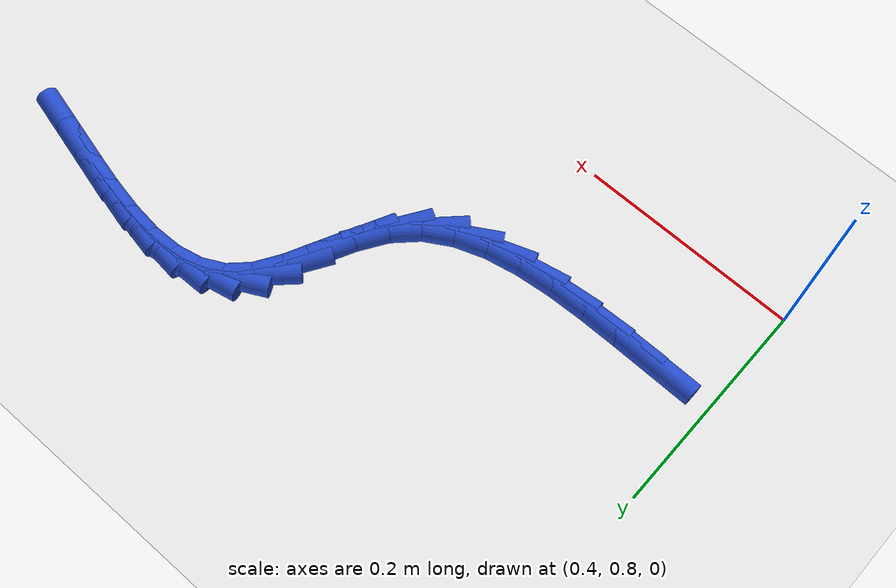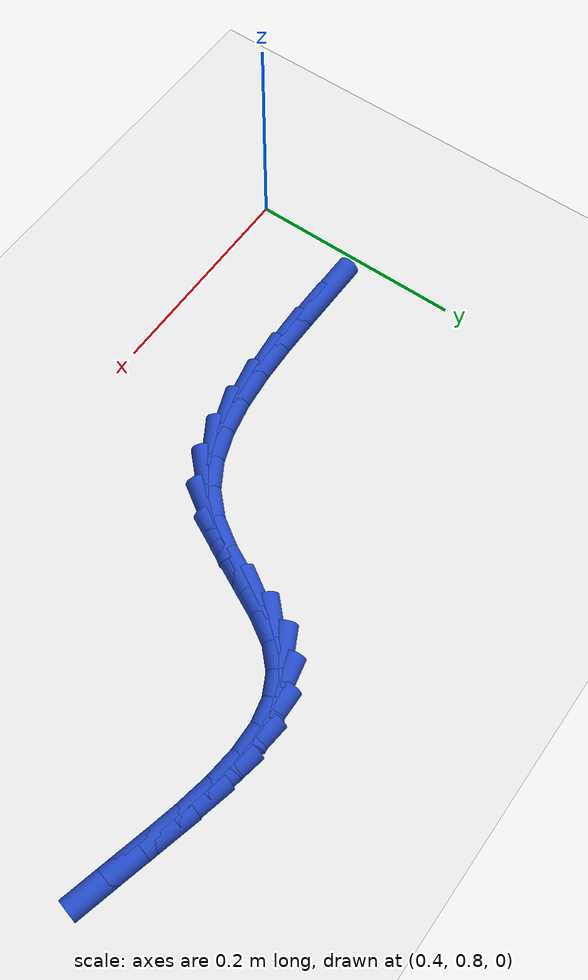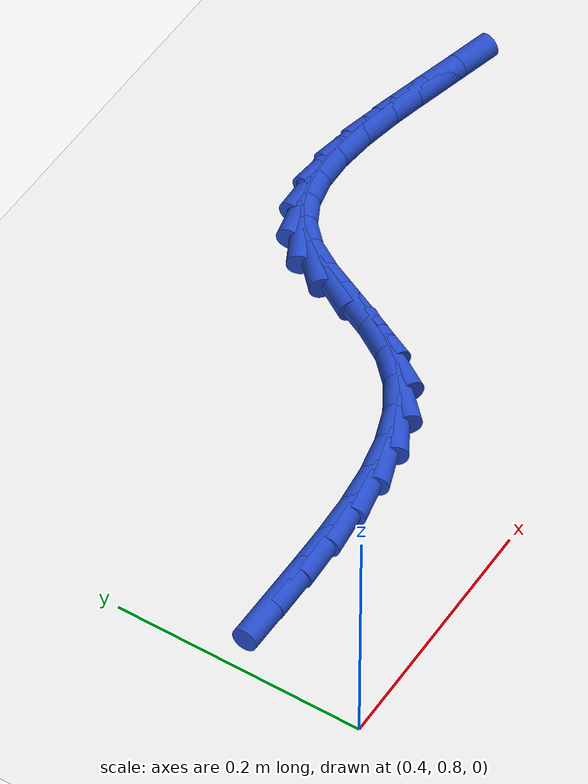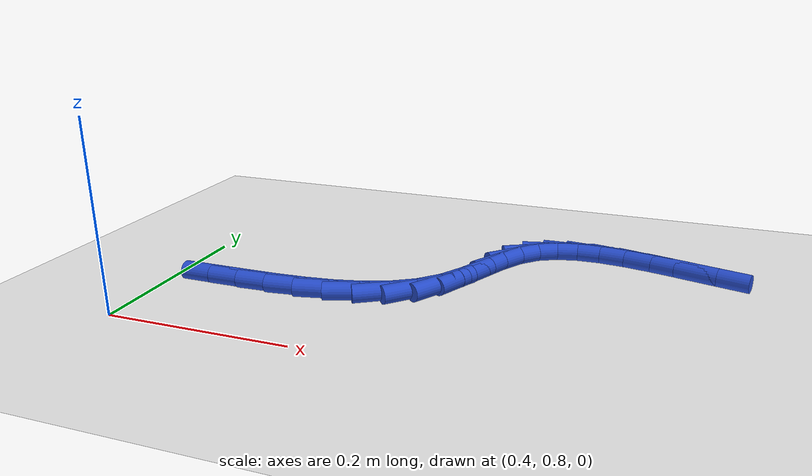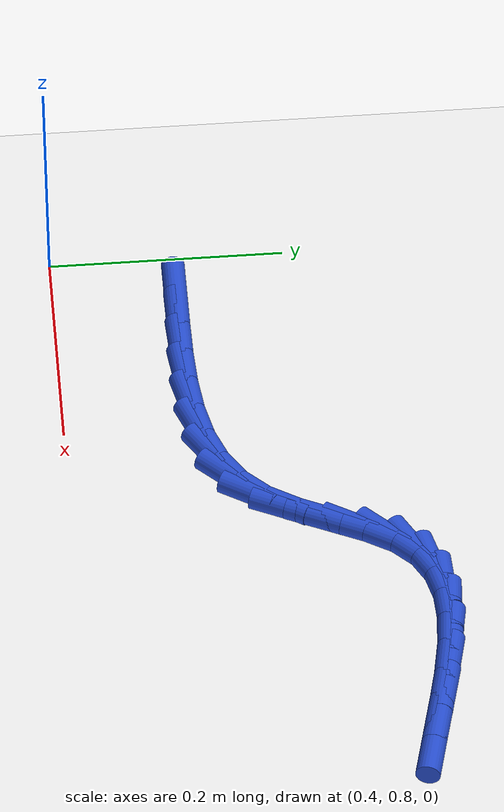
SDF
<sdf version="1.6">
 <world name="default">
  <model name="ground_plane">
   <static>1</static>
   <link name="link">
    <collision name="collision">
     <geometry><plane><normal>0 0 1</normal><size>100 100</size></plane></geometry>
     <surface><friction><ode><mu>100</mu><mu2>50</mu2></ode></friction></surface>
    </collision>
    <visual name="visual">
     <cast_shadows>0</cast_shadows>
     <geometry><plane><normal>0 0 1</normal><size>100 100</size></plane></geometry>
     <material>
      <script><uri>file://media/materials/scripts/gazebo.material</uri><name>Gazebo/WhiteGlow</name></script>
     </material>
    </visual>
   </link>
  </model>
  <model name="line">
   <link name="link_39">
    <pose>0.45605554837720175 0.9045013837530216 0.01 0 1.57 -0.008109527975908009</pose>
    <collision name="collision">
     <geometry><cylinder><radius>0.01</radius><length>0.08</length></cylinder></geometry>
    </collision>
    <visual name="visual">
     <material>
      <script><name>Gazebo/Blue</name><uri>file://media/materials/scripts/gazebo.material</uri></script>
     </material>
     <geometry><cylinder><radius>0.01</radius><length>0.08</length></cylinder></geometry>
    </visual>
   </link>
   <link name="link_40">
    <pose>0.4898170539359239 0.9042275878771469 0.01 0 1.57 0.0038710100846058213</pose>
    <collision name="collision">
     <geometry><cylinder><radius>0.01</radius><length>0.08</length></cylinder></geometry>
    </collision>
    <visual name="visual">
     <material>
      <script><name>Gazebo/Blue</name><uri>file://media/materials/scripts/gazebo.material</uri></script>
     </material>
     <geometry><cylinder><radius>0.01</radius><length>0.08</length></cylinder></geometry>
    </visual>
   </link>
   <link name="link_41">
    <pose>0.5239717735532485 0.9043598018016192 0.01 0 1.57 0.040707716890212735</pose>
    <collision name="collision">
     <geometry><cylinder><radius>0.01</radius><length>0.08</length></cylinder></geometry>
    </collision>
    <visual name="visual">
     <material>
      <script><name>Gazebo/Blue</name><uri>file://media/materials/scripts/gazebo.material</uri></script>
     </material>
     <geometry><cylinder><radius>0.01</radius><length>0.08</length></cylinder></geometry>
    </visual>
   </link>
   <link name="link_42">
    <pose>0.5577456328791828 0.9057354184424374 0.01 0 1.57 0.1055694596647271</pose>
    <collision name="collision">
     <geometry><cylinder><radius>0.01</radius><length>0.08</length></cylinder></geometry>
    </collision>
    <visual name="visual">
     <material>
      <script><name>Gazebo/Blue</name><uri>file://media/materials/scripts/gazebo.material</uri></script>
     </material>
     <geometry><cylinder><radius>0.01</radius><length>0.08</length></cylinder></geometry>
    </visual>
   </link>
   <link name="link_43">
    <pose>0.5903645575637347 0.9091918307155998 0.01 0 1.57 0.20479786162174354</pose>
    <collision name="collision">
     <geometry><cylinder><radius>0.01</radius><length>0.08</length></cylinder></geometry>
    </collision>
    <visual name="visual">
     <material>
      <script><name>Gazebo/Blue</name><uri>file://media/materials/scripts/gazebo.material</uri></script>
     </material>
     <geometry><cylinder><radius>0.01</radius><length>0.08</length></cylinder></geometry>
    </visual>
   </link>
   <link name="link_44">
    <pose>0.6210544732569114 0.9155664315371048 0.01 0 1.57 0.34729178556325474</pose>
    <collision name="collision">
     <geometry><cylinder><radius>0.01</radius><length>0.08</length></cylinder></geometry>
    </collision>
    <visual name="visual">
     <material>
      <script><name>Gazebo/Blue</name><uri>file://media/materials/scripts/gazebo.material</uri></script>
     </material>
     <geometry><cylinder><radius>0.01</radius><length>0.08</length></cylinder></geometry>
    </visual>
   </link>
   <link name="link_45">
    <pose>0.649041305608721 0.925696613822951 0.01 0 1.57 0.5409398965283047</pose>
    <collision name="collision">
     <geometry><cylinder><radius>0.01</radius><length>0.08</length></cylinder></geometry>
    </collision>
    <visual name="visual">
     <material>
      <script><name>Gazebo/Blue</name><uri>file://media/materials/scripts/gazebo.material</uri></script>
     </material>
     <geometry><cylinder><radius>0.01</radius><length>0.08</length></cylinder></geometry>
    </visual>
   </link>
   <link name="link_46">
    <pose>0.6735509802691708 0.940419770489137 0.01 0 1.57 0.7823945695965688</pose>
    <collision name="collision">
     <geometry><cylinder><radius>0.01</radius><length>0.08</length></cylinder></geometry>
    </collision>
    <visual name="visual">
     <material>
      <script><name>Gazebo/Blue</name><uri>file://media/materials/scripts/gazebo.material</uri></script>
     </material>
     <geometry><cylinder><radius>0.01</radius><length>0.08</length></cylinder></geometry>
    </visual>
   </link>
   <link name="link_47">
    <pose>0.6938162028023086 0.9605636202183369 0.01 0 1.57 1.0023575802286913</pose>
    <collision name="collision">
     <geometry><cylinder><radius>0.01</radius><length>0.08</length></cylinder></geometry>
    </collision>
    <visual name="visual">
     <material>
      <script><name>Gazebo/Blue</name><uri>file://media/materials/scripts/gazebo.material</uri></script>
     </material>
     <geometry><cylinder><radius>0.01</radius><length>0.08</length></cylinder></geometry>
    </visual>
   </link>
   <link name="link_48">
    <pose>0.7099093832979406 0.9857577105278675 0.01 0 1.57 1.1109638539307605</pose>
    <collision name="collision">
     <geometry><cylinder><radius>0.01</radius><length>0.08</length></cylinder></geometry>
    </collision>
    <visual name="visual">
     <material>
      <script><name>Gazebo/Blue</name><uri>file://media/materials/scripts/gazebo.material</uri></script>
     </material>
     <geometry><cylinder><radius>0.01</radius><length>0.08</length></cylinder></geometry>
    </visual>
   </link>
   <link name="link_49">
    <pose>0.7235442671011745 1.0132895739580428 0.01 0 1.57 1.1179962493465696</pose>
    <collision name="collision">
     <geometry><cylinder><radius>0.01</radius><length>0.08</length></cylinder></geometry>
    </collision>
    <visual name="visual">
     <material>
      <script><name>Gazebo/Blue</name><uri>file://media/materials/scripts/gazebo.material</uri></script>
     </material>
     <geometry><cylinder><radius>0.01</radius><length>0.08</length></cylinder></geometry>
    </visual>
   </link>
   <link name="link_50">
    <pose>0.736624652804188 1.04017555680028 0.01 0 1.57 1.0154687004191143</pose>
    <collision name="collision">
     <geometry><cylinder><radius>0.01</radius><length>0.08</length></cylinder></geometry>
    </collision>
    <visual name="visual">
     <material>
      <script><name>Gazebo/Blue</name><uri>file://media/materials/scripts/gazebo.material</uri></script>
     </material>
     <geometry><cylinder><radius>0.01</radius><length>0.08</length></cylinder></geometry>
    </visual>
   </link>
   <link name="link_51">
    <pose>0.7510543389991587 1.063432005345998 0.01 0 1.57 0.7725158500407124</pose>
    <collision name="collision">
     <geometry><cylinder><radius>0.01</radius><length>0.08</length></cylinder></geometry>
    </collision>
    <visual name="visual">
     <material>
      <script><name>Gazebo/Blue</name><uri>file://media/materials/scripts/gazebo.material</uri></script>
     </material>
     <geometry><cylinder><radius>0.01</radius><length>0.08</length></cylinder></geometry>
    </visual>
   </link>
   <link name="link_52">
    <pose>0.768518359638799 1.080451770476029 0.01 0 1.57 0.47516387497505197</pose>
    <collision name="collision">
     <geometry><cylinder><radius>0.01</radius><length>0.08</length></cylinder></geometry>
    </collision>
    <visual name="visual">
     <material>
      <script><name>Gazebo/Blue</name><uri>file://media/materials/scripts/gazebo.material</uri></script>
     </material>
     <geometry><cylinder><radius>0.01</radius><length>0.08</length></cylinder></geometry>
    </visual>
   </link>
   <link name="link_53">
    <pose>0.789253785199944 1.0911197186698152 0.01 0 1.57 0.21692660844581932</pose>
    <collision name="collision">
     <geometry><cylinder><radius>0.01</radius><length>0.08</length></cylinder></geometry>
    </collision>
    <visual name="visual">
     <material>
      <script><name>Gazebo/Blue</name><uri>file://media/materials/scripts/gazebo.material</uri></script>
     </material>
     <geometry><cylinder><radius>0.01</radius><length>0.08</length></cylinder></geometry>
    </visual>
   </link>
   <link name="link_54">
    <pose>0.8129093476070193 1.0963332756835351 0.01 0 1.57 0.025145153268256303</pose>
    <collision name="collision">
     <geometry><cylinder><radius>0.01</radius><length>0.08</length></cylinder></geometry>
    </collision>
    <visual name="visual">
     <material>
      <script><name>Gazebo/Blue</name><uri>file://media/materials/scripts/gazebo.material</uri></script>
     </material>
     <geometry><cylinder><radius>0.01</radius><length>0.08</length></cylinder></geometry>
    </visual>
   </link>
   <link name="link_55">
    <pose>0.8391320809453228 1.0969927893371179 0.01 0 1.57 -0.10490545678973147</pose>
    <collision name="collision">
     <geometry><cylinder><radius>0.01</radius><length>0.08</length></cylinder></geometry>
    </collision>
    <visual name="visual">
     <material>
      <script><name>Gazebo/Blue</name><uri>file://media/materials/scripts/gazebo.material</uri></script>
     </material>
     <geometry><cylinder><radius>0.01</radius><length>0.08</length></cylinder></geometry>
    </visual>
   </link>
   <link name="link_56">
    <pose>0.8675690193001541 1.0939986074504926 0.01 0 1.57 -0.18747127913158096</pose>
    <collision name="collision">
     <geometry><cylinder><radius>0.01</radius><length>0.08</length></cylinder></geometry>
    </collision>
    <visual name="visual">
     <material>
      <script><name>Gazebo/Blue</name><uri>file://media/materials/scripts/gazebo.material</uri></script>
     </material>
     <geometry><cylinder><radius>0.01</radius><length>0.08</length></cylinder></geometry>
    </visual>
   </link>
   <link name="link_57">
    <pose>0.8978671967568109 1.0882510778435888 0.01 0 1.57 -0.23456317669375942</pose>
    <collision name="collision">
     <geometry><cylinder><radius>0.01</radius><length>0.08</length></cylinder></geometry>
    </collision>
    <visual name="visual">
     <material>
      <script><name>Gazebo/Blue</name><uri>file://media/materials/scripts/gazebo.material</uri></script>
     </material>
     <geometry><cylinder><radius>0.01</radius><length>0.08</length></cylinder></geometry>
    </visual>
   </link>
   <link name="link_58">
    <pose>0.9296736474005931 1.0806505483363351 0.01 0 1.57 -0.25388844540533634</pose>
    <collision name="collision">
     <geometry><cylinder><radius>0.01</radius><length>0.08</length></cylinder></geometry>
    </collision>
    <visual name="visual">
     <material>
      <script><name>Gazebo/Blue</name><uri>file://media/materials/scripts/gazebo.material</uri></script>
     </material>
     <geometry><cylinder><radius>0.01</radius><length>0.08</length></cylinder></geometry>
    </visual>
   </link>
   <link name="link_59">
    <pose>0.9626354053167987 1.072097366748661 0.01 0 1.57 -0.24955774497763403</pose>
    <collision name="collision">
     <geometry><cylinder><radius>0.01</radius><length>0.08</length></cylinder></geometry>
    </collision>
    <visual name="visual">
     <material>
      <script><name>Gazebo/Blue</name><uri>file://media/materials/scripts/gazebo.material</uri></script>
     </material>
     <geometry><cylinder><radius>0.01</radius><length>0.08</length></cylinder></geometry>
    </visual>
   </link>
  </model>
 </world>
</sdf>
